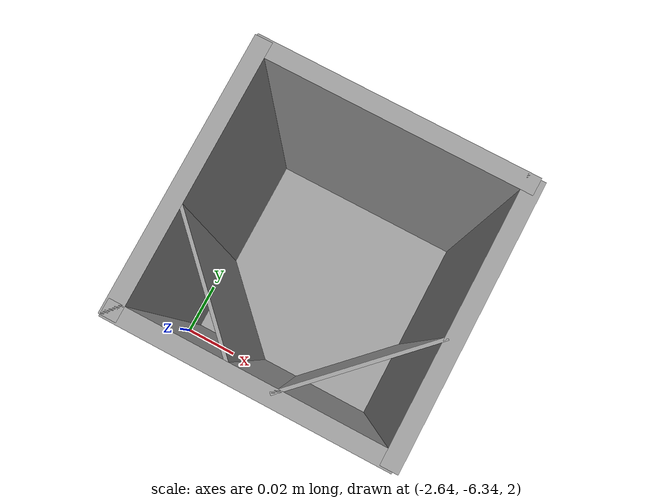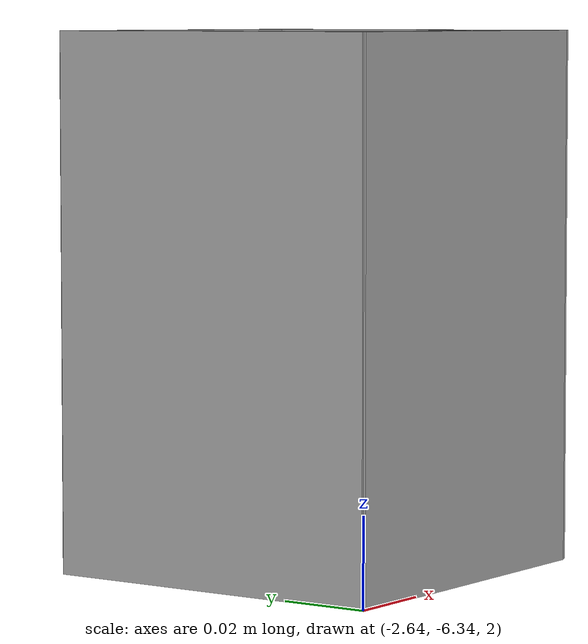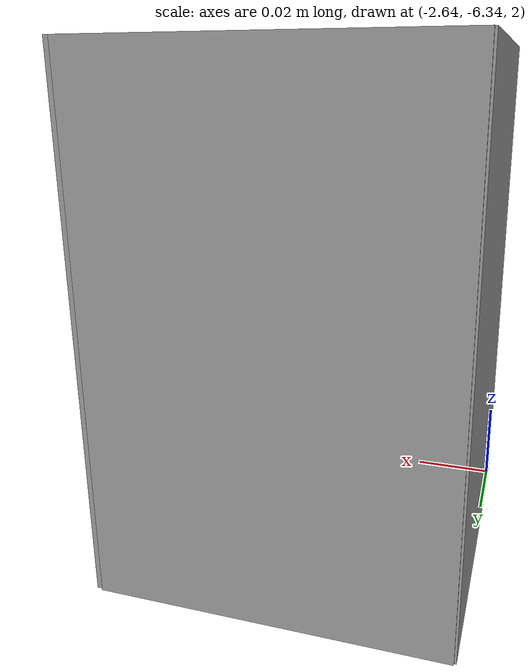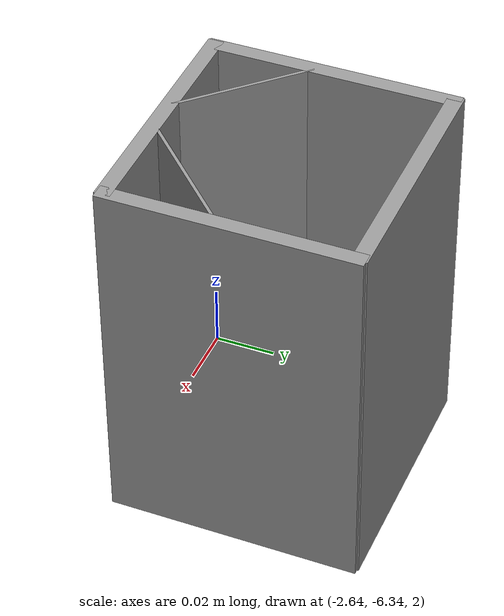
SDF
<sdf version="1.4">
    <model name="mug">
        <pose>-2.600000 -6.300000 2.000000 0.000000 -0.000000 0.000000</pose>
        <link name="mug_link">
            <pose>0.000000 0.000000 0.000000 0.000000 -0.000000 0.000000</pose>
            <inertial>
                <pose>0.000125 -0.005375 0.046250 0.000000 -0.000000 0.000000</pose>
                <inertia>
                    <ixx>0.000334</ixx>
                    <ixy>0.000000</ixy>
                    <ixz>-0.000001</ixz>
                    <iyy>0.000303</iyy>
                    <iyz>0.000026</iyz>
                    <izz>0.000165</izz>
                </inertia>
                <mass>0.0080000</mass>
            </inertial>
            <collision name="mug_bottom_collision">
                <pose>0.000000 0.000000 0.005000 0.000000 -0.000000 0.000000</pose>
                <geometry>
                    <box>
                        <size>0.080000 0.080000 0.010000</size>
                    </box>
                </geometry>
                <surface>
                    <friction>
                        <ode>
                            <mu>0.1</mu>
                            <mu2>0.1</mu2>
                            <fdir1>0.000000 0.000000 0.000000</fdir1>
                            <slip1>10.0</slip1>
                            <slip2>10.0</slip2>
                        </ode>
                    </friction>
                    <bounce>
                        <restitution_coefficient>0.000000</restitution_coefficient>
                        <threshold>100000.000000</threshold>
                    </bounce>
                    <contact>
                        <ode>
                            <soft_cfm>0.0</soft_cfm>
                            <soft_erp>0.0</soft_erp>
                            <kp>1000000000000.0</kp>
                            <kd>100000.0</kd>
                            <max_vel>100.000000</max_vel>
                            <min_depth>0.001000</min_depth>
                        </ode>
                    </contact>
                </surface>
                <laser_retro>0.000000</laser_retro>
            </collision>
            <visual name="mug_bottom_visual">
                <pose>0.000000 0.000000 0.005000 0.000000 -0.000000 0.000000</pose>
                <geometry>
                    <box>
                        <size>0.080000 0.080000 0.010000</size>
                    </box>
                </geometry>
                <material>
                    <script>
                        <uri>file://media/materials/scripts/gazebo.material</uri>
                        <name>Gazebo/Grey</name>
                    </script>
                </material>
                <cast_shadows>1</cast_shadows>
                <laser_retro>0.000000</laser_retro>
                <transparency>0.000000</transparency>
            </visual>
            <collision name="mug_backside_collision">
                <pose>0.039000 0.000000 0.060000 0.000000 -0.000000 0.000000</pose>
                <geometry>
                    <box>
                        <size>0.005000 0.080000 0.120000</size>
                    </box>
                </geometry>
                <surface>
                    <friction>
                        <ode>
                            <mu>0.1</mu>
                            <mu2>0.1</mu2>
                            <fdir1>0.000000 0.000000 0.000000</fdir1>
                            <slip1>10.0</slip1>
                            <slip2>10.0</slip2>
                        </ode>
                    </friction>
                    <bounce>
                        <restitution_coefficient>0.000000</restitution_coefficient>
                        <threshold>100000.000000</threshold>
                    </bounce>
                    <contact>
                        <ode>
                            <soft_cfm>0.0</soft_cfm>
                            <soft_erp>0.0</soft_erp>
                            <kp>1000000000000.0</kp>
                            <kd>100000.0</kd>
                            <max_vel>100.000000</max_vel>
                            <min_depth>0.001000</min_depth>
                        </ode>
                    </contact>
                </surface>
                <laser_retro>0.000000</laser_retro>
            </collision>
            <visual name="mug_backside_visual">
                <pose>0.039000 0.000000 0.060000 0.000000 -0.000000 0.000000</pose>
                <geometry>
                    <box>
                        <size>0.005000 0.080000 0.120000</size>
                    </box>
                </geometry>
                <material>
                    <script>
                        <uri>file://media/materials/scripts/gazebo.material</uri>
                        <name>Gazebo/Grey</name>
                    </script>
                </material>
                <cast_shadows>1</cast_shadows>
                <laser_retro>0.000000</laser_retro>
                <transparency>0.000000</transparency>
            </visual>
            <collision name="mug_leftside_collision">
                <pose>0.000000 0.038000 0.060000 0.000000 -0.000000 0.000000</pose>
                <geometry>
                    <box>
                        <size>0.080000 0.005000 0.120000</size>
                    </box>
                </geometry>
                <surface>
                    <friction>
                        <ode>
                            <mu>0.1</mu>
                            <mu2>0.1</mu2>
                            <fdir1>0.000000 0.000000 0.000000</fdir1>
                            <slip1>10.0</slip1>
                            <slip2>10.0</slip2>
                        </ode>
                    </friction>
                    <bounce>
                        <restitution_coefficient>0.000000</restitution_coefficient>
                        <threshold>100000.000000</threshold>
                    </bounce>
                    <contact>
                        <ode>
                            <soft_cfm>0.0</soft_cfm>
                            <soft_erp>0.0</soft_erp>
                            <kp>1000000000000.0</kp>
                            <kd>100000.0</kd>
                            <max_vel>100.000000</max_vel>
                            <min_depth>0.001000</min_depth>
                        </ode>
                    </contact>
                </surface>
                <laser_retro>0.000000</laser_retro>
            </collision>
            <visual name="mug_leftside_visual">
                <pose>0.000000 0.038000 0.060000 0.000000 -0.000000 0.000000</pose>
                <geometry>
                    <box>
                        <size>0.080000 0.005000 0.120000</size>
                    </box>
                </geometry>
                <material>
                    <script>
                        <uri>file://media/materials/scripts/gazebo.material</uri>
                        <name>Gazebo/Grey</name>
                    </script>
                </material>
                <cast_shadows>1</cast_shadows>
                <laser_retro>0.000000</laser_retro>
                <transparency>0.000000</transparency>
            </visual>
            <collision name="mug_frontside_collision">
                <pose>-0.038000 0.000000 0.060000 0.000000 -0.000000 0.000000</pose>
                <geometry>
                    <box>
                        <size>0.005000 0.080000 0.120000</size>
                    </box>
                </geometry>
                <surface>
                    <friction>
                        <ode>
                            <mu>0.1</mu>
                            <mu2>0.1</mu2>
                            <fdir1>0.000000 0.000000 0.000000</fdir1>
                            <slip1>10.0</slip1>
                            <slip2>10.0</slip2>
                        </ode>
                    </friction>
                    <bounce>
                        <restitution_coefficient>0.000000</restitution_coefficient>
                        <threshold>100000.000000</threshold>
                    </bounce>
                    <contact>
                        <ode>
                            <soft_cfm>0.0</soft_cfm>
                            <soft_erp>0.0</soft_erp>
                            <kp>1000000000000.0</kp>
                            <kd>100000.0</kd>
                            <max_vel>100.000000</max_vel>
                            <min_depth>0.001000</min_depth>
                        </ode>
                    </contact>
                </surface>
                <laser_retro>0.000000</laser_retro>
            </collision>
            <visual name="mug_frontside_visual">
                <pose>-0.038000 0.000000 0.060000 0.000000 -0.000000 0.000000</pose>
                <geometry>
                    <box>
                        <size>0.005000 0.080000 0.120000</size>
                    </box>
                </geometry>
                <material>
                    <script>
                        <uri>file://media/materials/scripts/gazebo.material</uri>
                        <name>Gazebo/Grey</name>
                    </script>
                </material>
                <cast_shadows>1</cast_shadows>
                <laser_retro>0.000000</laser_retro>
                <transparency>0.000000</transparency>
            </visual>

            <collision name="mug_rightside_collision">
                <pose>0.000000 -0.038000 0.060000 0.000000 -0.000000 0.000000</pose>
                <geometry>
                    <box>
                        <size>0.080000 0.005000 0.120000</size>
                    </box>
                </geometry>
                <surface>
                    <friction>
                        <ode>
                            <mu>0.1</mu>
                            <mu2>0.1</mu2>
                            <fdir1>0.000000 0.000000 0.000000</fdir1>
                            <slip1>10.0</slip1>
                            <slip2>10.0</slip2>
                        </ode>
                    </friction>
                    <bounce>
                        <restitution_coefficient>0.000000</restitution_coefficient>
                        <threshold>100000.000000</threshold>
                    </bounce>
                    <contact>
                        <ode>
                            <soft_cfm>0.0</soft_cfm>
                            <soft_erp>0.0</soft_erp>
                            <kp>1000000000000.0</kp>
                            <kd>100000.0</kd>
                            <max_vel>100.000000</max_vel>
                            <min_depth>0.001000</min_depth>
                        </ode>
                    </contact>
                </surface>
                <laser_retro>0.000000</laser_retro>
            </collision>
            <visual name="mug_rightside_visual">
                <pose>0.000000 -0.038000 0.060000 0.000000 -0.000000 0.000000</pose>
                <geometry>
                    <box>
                        <size>0.080000 0.005000 0.120000</size>
                    </box>
                </geometry>
                <material>
                    <script>
                        <uri>file://media/materials/scripts/gazebo.material</uri>
                        <name>Gazebo/Grey</name>
                    </script>
                </material>
                <cast_shadows>1</cast_shadows>
                <laser_retro>0.000000</laser_retro>
                <transparency>0.000000</transparency>
            </visual>
            <collision name="mug_help_right_collision">
                <pose>0.021500 -0.021500 0.060000 0.000000 0.000000 -0.785398</pose>
                <geometry>
                    <box>
                        <size>0.001000 0.045000 0.120000</size>
                    </box>
                </geometry>
                <surface>
                    <friction>
                        <ode>
                            <mu>0.1</mu>
                            <mu2>0.1</mu2>
                            <fdir1>0.000000 0.000000 0.000000</fdir1>
                            <slip1>10.0</slip1>
                            <slip2>10.0</slip2>
                        </ode>
                    </friction>
                    <bounce>
                        <restitution_coefficient>0.000000</restitution_coefficient>
                        <threshold>100000.000000</threshold>
                    </bounce>
                    <contact>
                        <ode>
                            <soft_cfm>0.0</soft_cfm>
                            <soft_erp>0.0</soft_erp>
                            <kp>1000000000000.0</kp>
                            <kd>100000.0</kd>
                            <max_vel>100.000000</max_vel>
                            <min_depth>0.001000</min_depth>
                        </ode>
                    </contact>
                </surface>
                <laser_retro>0.000000</laser_retro>
            </collision>
            <visual name="mug_help_right_visual">
                <pose>0.021500 -0.021500 0.060000 0.000000 0.000000 -0.785398</pose>
                <geometry>
                    <box>
                        <size>0.001000 0.045000 0.120000</size>
                    </box>
                </geometry>
                <material>
                    <script>
                        <uri>file://media/materials/scripts/gazebo.material</uri>
                        <name>Gazebo/Grey</name>
                    </script>
                </material>
                <cast_shadows>1</cast_shadows>
                <laser_retro>0.000000</laser_retro>
                <transparency>0.000000</transparency>
            </visual>
            <collision name="mug_help_left_collision">
                <pose>-0.021500 -0.021500 0.060000 0.000000 -0.000000 0.785398</pose>
                <geometry>
                    <box>
                        <size>0.001000 0.045000 0.120000</size>
                    </box>
                </geometry>
                <surface>
                    <friction>
                        <ode>
                            <mu>0.1</mu>
                            <mu2>0.1</mu2>
                            <fdir1>0.000000 0.000000 0.000000</fdir1>
                            <slip1>10.0</slip1>
                            <slip2>10.0</slip2>
                        </ode>
                    </friction>
                    <bounce>
                        <restitution_coefficient>0.000000</restitution_coefficient>
                        <threshold>100000.000000</threshold>
                    </bounce>
                    <contact>
                        <ode>
                            <soft_cfm>0.0</soft_cfm>
                            <soft_erp>0.0</soft_erp>
                            <kp>1000000000000.0</kp>
                            <kd>100000.0</kd>
                            <max_vel>100.000000</max_vel>
                            <min_depth>0.001000</min_depth>
                        </ode>
                    </contact>
                </surface>
                <laser_retro>0.000000</laser_retro>
            </collision>
            <visual name="mug_help_left_visual">
                <pose>-0.021500 -0.021500 0.060000 0.000000 -0.000000 0.785398</pose>
                <geometry>
                    <box>
                        <size>0.001000 0.045000 0.120000</size>
                    </box>
                </geometry>
                <material>
                    <script>
                        <uri>file://media/materials/scripts/gazebo.material</uri>
                        <name>Gazebo/Grey</name>
                    </script>
                </material>
                <cast_shadows>1</cast_shadows>
                <laser_retro>0.000000</laser_retro>
                <transparency>0.000000</transparency>
            </visual>

	    <!-- Visual Helper -->
		<!-- VISUAL PLUGIN -->
		<!--plugin name="mug_visual_plugin" filename="libmug_visual_plugin.so"/-->
            <!--/visual-->

            <gravity>1</gravity>
            <self_collide>0</self_collide>
            <kinematic>0</kinematic>
        </link>
        <static>0</static>

        <!--plugin name="mug_plugin" filename="libmug_plugin.so" /-->

    </model>
</sdf>
